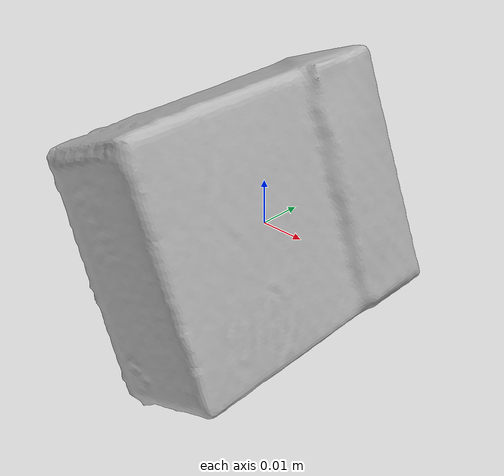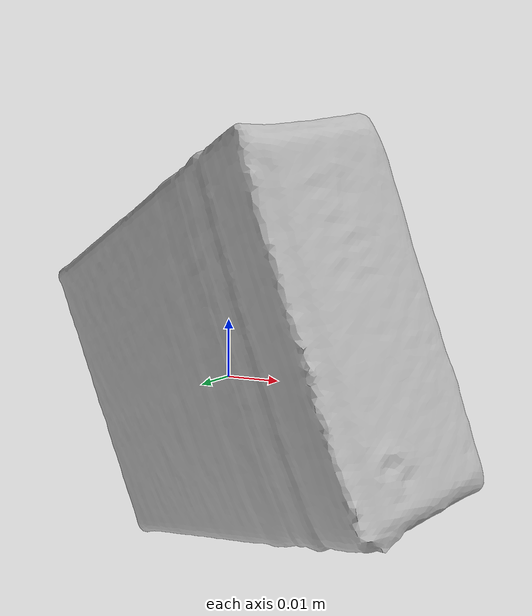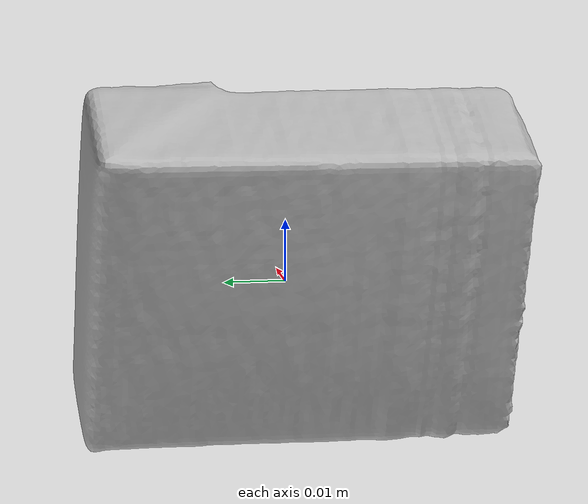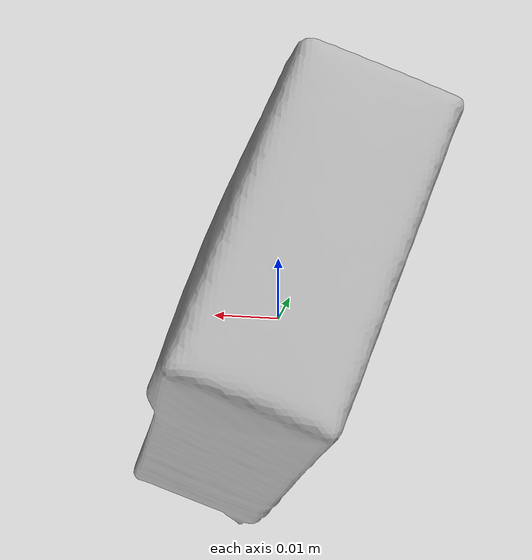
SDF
<?xml version='1.0'?>
<sdf version="1.4">
  <model name="DropsCherry">
    <static>false</static>
    <link name="link">
      <inertial>
        <pose>-0.00027935851880771446 -0.0017223928138585729 0.002427250153258834 -1.5803371275383116 0.36088399642198155 3.1281961165500367</pose>
        <mass>0.009997126485937334</mass>
        <inertia>
          <ixx>6.432533691522442e-06</ixx>
          <ixy>-5.926746249392948e-22</ixy>
          <ixz>-3.0906507354606953e-22</ixz>
          <iyy>4.556147983948091e-06</iyy>
          <iyz>-4.1687131036694807e-22</iyz>
          <izz>3.000799397106032e-06</izz>
        </inertia>
      </inertial>
      <collision name="collision">
        <geometry>
          <mesh>
            <!-- Use a downsampled mesh for collisions -->
            <uri>model:///DropsCherry/DropsCherry_250_collision.obj</uri>
	        </mesh>
        </geometry>
        <surface>
      </surface>
      </collision>
      <visual name="visual">
        <geometry>
          <mesh>
            <uri>model:///DropsCherry/DropsCherry_25k_tex.obj</uri>
	        </mesh>
        </geometry>
        <material>
          <script>
            <uri>model:///DropsCherry/DropsCherry.material</uri>
            <name>DropsCherry</name>
          </script>
        </material>
      </visual>
    </link>
  </model>
</sdf>
